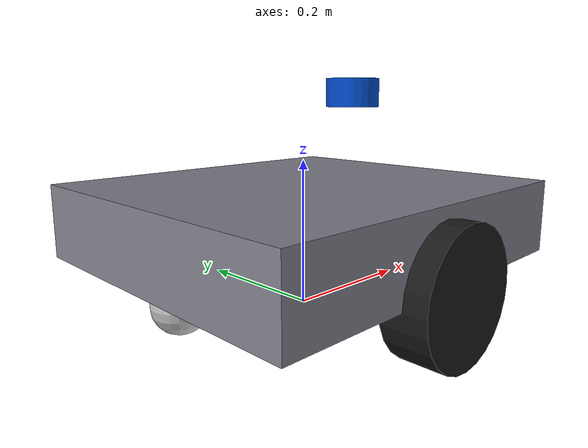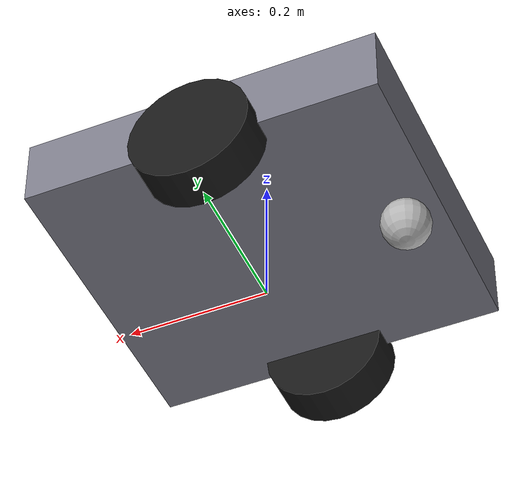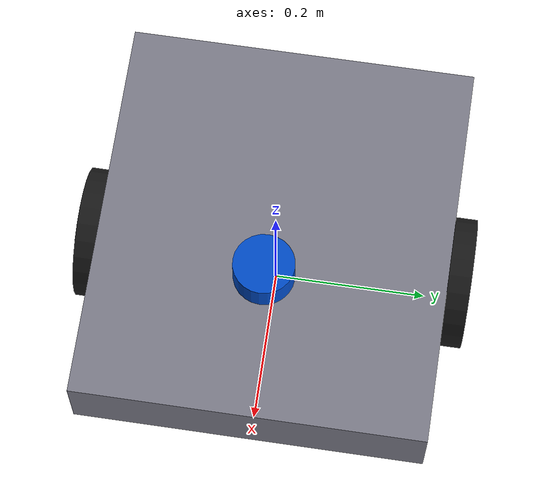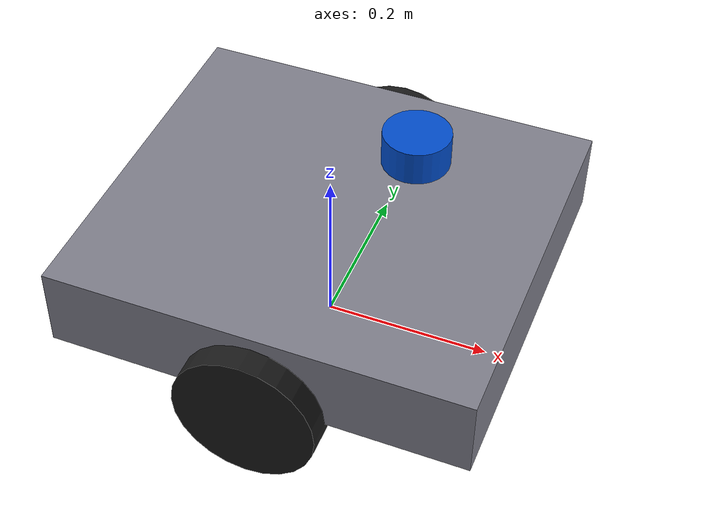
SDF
<?xml version="1.0"?>
<sdf version="1.9">
  <model name="sim_robot">
    <pose>0 0 0.12 0 0 0</pose>

    <!-- ====== base_link (corpo principal) ====== -->
    <link name="base_link">
      <inertial>
        <mass>10.0</mass>
        <inertia>
          <ixx>0.2</ixx><iyy>0.2</iyy><izz>0.2</izz>
          <ixy>0</ixy><ixz>0</ixz><iyz>0</iyz>
        </inertia>
      </inertial>
      <visual name="body_visual">
        <geometry><box><size>0.50 0.45 0.10</size></box></geometry>
        <material>
          <ambient>0.3 0.3 0.35 1</ambient>
          <diffuse>0.5 0.5 0.55 1</diffuse>
        </material>
      </visual>
      <collision name="body_collision">
        <geometry><box><size>0.50 0.45 0.10</size></box></geometry>
      </collision>
    </link>

    <!-- ====== Rodas ====== -->
    <link name="left_wheel">
      <pose>0 0.225 -0.05 -1.5707 0 0</pose>
      <inertial>
        <mass>1.5</mass>
        <inertia>
          <ixx>0.005</ixx><iyy>0.005</iyy><izz>0.009</izz>
          <ixy>0</ixy><ixz>0</ixz><iyz>0</iyz>
        </inertia>
      </inertial>
      <visual name="left_wheel_visual">
        <geometry><cylinder><radius>0.085</radius><length>0.06</length></cylinder></geometry>
        <material><diffuse>0.1 0.1 0.1 1</diffuse></material>
      </visual>
      <collision name="left_wheel_collision">
        <geometry><cylinder><radius>0.085</radius><length>0.06</length></cylinder></geometry>
        <surface><friction><ode><mu>1.0</mu><mu2>1.0</mu2></ode></friction></surface>
      </collision>
    </link>
    <joint name="left_wheel_joint" type="revolute">
      <parent>base_link</parent>
      <child>left_wheel</child>
      <axis>
        <xyz>0 0 1</xyz>
        <limit><lower>-1e16</lower><upper>1e16</upper></limit>
      </axis>
    </joint>

    <link name="right_wheel">
      <pose>0 -0.225 -0.05 1.5707 0 0</pose>
      <inertial>
        <mass>1.5</mass>
        <inertia>
          <ixx>0.005</ixx><iyy>0.005</iyy><izz>0.009</izz>
          <ixy>0</ixy><ixz>0</ixz><iyz>0</iyz>
        </inertia>
      </inertial>
      <visual name="right_wheel_visual">
        <geometry><cylinder><radius>0.085</radius><length>0.06</length></cylinder></geometry>
        <material><diffuse>0.1 0.1 0.1 1</diffuse></material>
      </visual>
      <collision name="right_wheel_collision">
        <geometry><cylinder><radius>0.085</radius><length>0.06</length></cylinder></geometry>
        <surface><friction><ode><mu>1.0</mu><mu2>1.0</mu2></ode></friction></surface>
      </collision>
    </link>
    <joint name="right_wheel_joint" type="revolute">
      <parent>base_link</parent>
      <child>right_wheel</child>
      <axis>
        <xyz>0 0 1</xyz>
        <limit><lower>-1e16</lower><upper>1e16</upper></limit>
      </axis>
    </joint>

    <!-- ====== Caster esférico traseiro (estabilidade) ====== -->
    <link name="caster">
      <pose>-0.20 0 -0.07 0 0 0</pose>
      <inertial>
        <mass>0.1</mass>
        <inertia>
          <ixx>0.0001</ixx><iyy>0.0001</iyy><izz>0.0001</izz>
          <ixy>0</ixy><ixz>0</ixz><iyz>0</iyz>
        </inertia>
      </inertial>
      <visual name="caster_visual">
        <geometry><sphere><radius>0.035</radius></sphere></geometry>
      </visual>
      <collision name="caster_collision">
        <geometry><sphere><radius>0.035</radius></sphere></geometry>
        <surface>
          <friction><ode><mu>0.0</mu><mu2>0.0</mu2></ode></friction>
        </surface>
      </collision>
    </link>
    <joint name="caster_joint" type="fixed">
      <parent>base_link</parent>
      <child>caster</child>
    </joint>

    <!-- ====== LiDAR ====== -->
    <link name="base_laser">
      <pose>0.10 0 0.17 0 0 0</pose>
      <inertial>
        <mass>0.1</mass>
        <inertia>
          <ixx>0.0001</ixx><iyy>0.0001</iyy><izz>0.0001</izz>
          <ixy>0</ixy><ixz>0</ixz><iyz>0</iyz>
        </inertia>
      </inertial>
      <visual name="lidar_visual">
        <geometry><cylinder><radius>0.038</radius><length>0.04</length></cylinder></geometry>
        <material><diffuse>0.0 0.3 0.8 1</diffuse></material>
      </visual>
      <sensor name="lidar" type="gpu_lidar">
        <update_rate>10</update_rate>
        <topic>scan</topic>
        <always_on>1</always_on>
        <visualize>true</visualize>
        <gz_frame_id>base_laser</gz_frame_id>
        <lidar>
          <scan>
            <horizontal>
              <samples>360</samples>
              <resolution>1</resolution>
              <min_angle>-3.14159</min_angle>
              <max_angle>3.14159</max_angle>
            </horizontal>
          </scan>
          <range>
            <min>0.10</min>
            <max>12.0</max>
            <resolution>0.01</resolution>
          </range>
        </lidar>
      </sensor>
    </link>
    <joint name="laser_joint" type="fixed">
      <parent>base_link</parent>
      <child>base_laser</child>
    </joint>

    <!-- ====== Plugins ====== -->
    <!-- Diferencial: consome /cmd_vel, publica /odom e TF odom->base_link -->
    <plugin filename="gz-sim-diff-drive-system" name="gz::sim::systems::DiffDrive">
      <left_joint>left_wheel_joint</left_joint>
      <right_joint>right_wheel_joint</right_joint>
      <wheel_separation>0.45</wheel_separation>
      <wheel_radius>0.085</wheel_radius>
      <odom_publish_frequency>30</odom_publish_frequency>
      <topic>cmd_vel</topic>
      <odom_topic>odom</odom_topic>
      <frame_id>odom</frame_id>
      <child_frame_id>base_link</child_frame_id>
      <tf_topic>/tf</tf_topic>
      <max_linear_acceleration>1.0</max_linear_acceleration>
      <max_angular_acceleration>2.0</max_angular_acceleration>
    </plugin>

    <!-- Publica estados das juntas (rodas girando na visualização) -->
    <plugin filename="gz-sim-joint-state-publisher-system"
            name="gz::sim::systems::JointStatePublisher">
      <topic>joint_states</topic>
      <joint_name>left_wheel_joint</joint_name>
      <joint_name>right_wheel_joint</joint_name>
    </plugin>

    <!-- Publica pose de todos os links para os TFs estáticos secundários -->
    <plugin filename="gz-sim-pose-publisher-system"
            name="gz::sim::systems::PosePublisher">
      <publish_link_pose>true</publish_link_pose>
      <publish_sensor_pose>true</publish_sensor_pose>
      <publish_collision_pose>false</publish_collision_pose>
      <publish_visual_pose>false</publish_visual_pose>
      <publish_nested_model_pose>false</publish_nested_model_pose>
      <use_pose_vector_msg>true</use_pose_vector_msg>
      <static_publisher>true</static_publisher>
      <static_update_frequency>1</static_update_frequency>
    </plugin>
  </model>
</sdf>
